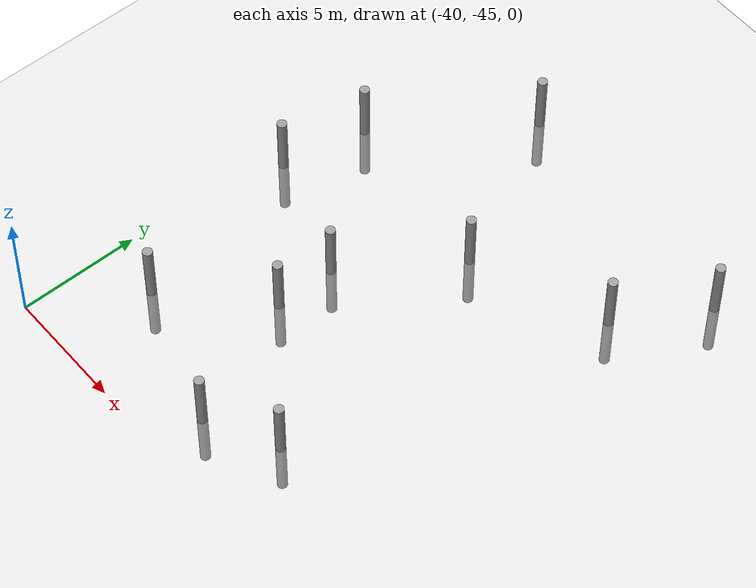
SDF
<sdf version="1.6">
 <world name="default">
  <model name="ground_plane">
   <static>1</static>
   <link name="link">
    <collision name="collision">
     <geometry><plane><normal>0 0 1</normal><size>100 100</size></plane></geometry>
     <surface><friction><ode><mu>100</mu><mu2>50</mu2></ode></friction></surface>
    </collision>
    <visual name="visual">
     <cast_shadows>0</cast_shadows>
     <geometry><plane><normal>0 0 1</normal><size>100 100</size></plane></geometry>
     <material>
      <script><uri>file://media/materials/scripts/gazebo.material</uri><name>Gazebo/Grey</name></script>
     </material>
    </visual>
   </link>
  </model>
  <model name="empty_pillars_8">
   <model name="empty_pillar_clone">
    <link name="link">
     <inertial>
      <mass>1</mass>
      <inertia><ixx>0.145833</ixx><ixy>0</ixy><ixz>0</ixz><iyy>0.145833</iyy><iyz>0</iyz><izz>0.125</izz></inertia>
     </inertial>
     <visual name="visual">
      <geometry><cylinder><radius>0.2</radius><length>5</length></cylinder></geometry>
      <material>
       <script><name>Gazebo/Grey</name><uri>file://media/materials/scripts/gazebo.material</uri></script>
       <shader type="vertex"><normal_map>__default__</normal_map></shader>
       <ambient>0.3 0.3 0.3 1</ambient>
       <diffuse>0.7 0.7 0.7 1</diffuse>
       <specular>0.01 0.01 0.01 1</specular>
       <emissive>0 0 0 1</emissive>
      </material>
     </visual>
     <collision name="collision">
      <geometry><cylinder><radius>0.05</radius><length>5</length></cylinder></geometry>
      <surface>
       <friction>
        <ode><mu>1</mu><mu2>1</mu2><fdir1>0 0 0</fdir1><slip1>0</slip1><slip2>0</slip2></ode>
        <torsional>
         <coefficient>1</coefficient>
         <patch_radius>0</patch_radius>
         <surface_radius>0</surface_radius>
         <use_patch_radius>1</use_patch_radius>
         <ode><slip>0</slip></ode>
        </torsional>
       </friction>
       <bounce><restitution_coefficient>0</restitution_coefficient><threshold>1e+06</threshold></bounce>
       <contact>
        <collide_without_contact>0</collide_without_contact>
        <collide_without_contact_bitmask>1</collide_without_contact_bitmask>
        <collide_bitmask>1</collide_bitmask>
        <ode>
         <soft_cfm>0</soft_cfm>
         <soft_erp>0.2</soft_erp>
         <kp>1e+13</kp>
         <kd>1</kd>
         <max_vel>0.01</max_vel>
         <min_depth>0</min_depth>
        </ode>
        <bullet>
         <split_impulse>1</split_impulse>
         <split_impulse_penetration_threshold>-0.01</split_impulse_penetration_threshold>
         <soft_cfm>0</soft_cfm>
         <soft_erp>0.2</soft_erp>
         <kp>1e+13</kp>
         <kd>1</kd>
        </bullet>
       </contact>
      </surface>
     </collision>
    </link>
    <static>0</static>
    <pose>1.47843 -4.49529 0 0 -0 0</pose>
   </model>
   <model name="empty_pillar_clone_12">
    <link name="link">
     <inertial>
      <mass>1</mass>
      <inertia><ixx>0.145833</ixx><ixy>0</ixy><ixz>0</ixz><iyy>0.145833</iyy><iyz>0</iyz><izz>0.125</izz></inertia>
     </inertial>
     <visual name="visual">
      <geometry><cylinder><radius>0.2</radius><length>5</length></cylinder></geometry>
      <material>
       <script><name>Gazebo/Grey</name><uri>file://media/materials/scripts/gazebo.material</uri></script>
       <shader type="vertex"><normal_map>__default__</normal_map></shader>
       <ambient>0.3 0.3 0.3 1</ambient>
       <diffuse>0.7 0.7 0.7 1</diffuse>
       <specular>0.01 0.01 0.01 1</specular>
       <emissive>0 0 0 1</emissive>
      </material>
     </visual>
     <collision name="collision">
      <geometry><cylinder><radius>0.05</radius><length>5</length></cylinder></geometry>
      <surface>
       <friction>
        <ode><mu>1</mu><mu2>1</mu2><fdir1>0 0 0</fdir1><slip1>0</slip1><slip2>0</slip2></ode>
        <torsional>
         <coefficient>1</coefficient>
         <patch_radius>0</patch_radius>
         <surface_radius>0</surface_radius>
         <use_patch_radius>1</use_patch_radius>
         <ode><slip>0</slip></ode>
        </torsional>
       </friction>
       <bounce><restitution_coefficient>0</restitution_coefficient><threshold>1e+06</threshold></bounce>
       <contact>
        <collide_without_contact>0</collide_without_contact>
        <collide_without_contact_bitmask>1</collide_without_contact_bitmask>
        <collide_bitmask>1</collide_bitmask>
        <ode>
         <soft_cfm>0</soft_cfm>
         <soft_erp>0.2</soft_erp>
         <kp>1e+13</kp>
         <kd>1</kd>
         <max_vel>0.01</max_vel>
         <min_depth>0</min_depth>
        </ode>
        <bullet>
         <split_impulse>1</split_impulse>
         <split_impulse_penetration_threshold>-0.01</split_impulse_penetration_threshold>
         <soft_cfm>0</soft_cfm>
         <soft_erp>0.2</soft_erp>
         <kp>1e+13</kp>
         <kd>1</kd>
        </bullet>
       </contact>
      </surface>
     </collision>
    </link>
    <static>0</static>
    <pose>-4.01464 -20.8403 0 0 -0 0</pose>
   </model>
   <model name="empty_pillar_clone_13">
    <link name="link">
     <inertial>
      <mass>1</mass>
      <inertia><ixx>0.145833</ixx><ixy>0</ixy><ixz>0</ixz><iyy>0.145833</iyy><iyz>0</iyz><izz>0.125</izz></inertia>
     </inertial>
     <visual name="visual">
      <geometry><cylinder><radius>0.2</radius><length>5</length></cylinder></geometry>
      <material>
       <script><name>Gazebo/Grey</name><uri>file://media/materials/scripts/gazebo.material</uri></script>
       <shader type="vertex"><normal_map>__default__</normal_map></shader>
       <ambient>0.3 0.3 0.3 1</ambient>
       <diffuse>0.7 0.7 0.7 1</diffuse>
       <specular>0.01 0.01 0.01 1</specular>
       <emissive>0 0 0 1</emissive>
      </material>
     </visual>
     <collision name="collision">
      <geometry><cylinder><radius>0.05</radius><length>5</length></cylinder></geometry>
      <surface>
       <friction>
        <ode><mu>1</mu><mu2>1</mu2><fdir1>0 0 0</fdir1><slip1>0</slip1><slip2>0</slip2></ode>
        <torsional>
         <coefficient>1</coefficient>
         <patch_radius>0</patch_radius>
         <surface_radius>0</surface_radius>
         <use_patch_radius>1</use_patch_radius>
         <ode><slip>0</slip></ode>
        </torsional>
       </friction>
       <bounce><restitution_coefficient>0</restitution_coefficient><threshold>1e+06</threshold></bounce>
       <contact>
        <collide_without_contact>0</collide_without_contact>
        <collide_without_contact_bitmask>1</collide_without_contact_bitmask>
        <collide_bitmask>1</collide_bitmask>
        <ode>
         <soft_cfm>0</soft_cfm>
         <soft_erp>0.2</soft_erp>
         <kp>1e+13</kp>
         <kd>1</kd>
         <max_vel>0.01</max_vel>
         <min_depth>0</min_depth>
        </ode>
        <bullet>
         <split_impulse>1</split_impulse>
         <split_impulse_penetration_threshold>-0.01</split_impulse_penetration_threshold>
         <soft_cfm>0</soft_cfm>
         <soft_erp>0.2</soft_erp>
         <kp>1e+13</kp>
         <kd>1</kd>
        </bullet>
       </contact>
      </surface>
     </collision>
    </link>
    <static>0</static>
    <pose>-9.01464 -14.4259 0 0 -0 0</pose>
   </model>
   <model name="empty_pillar_clone_15">
    <link name="link">
     <inertial>
      <mass>1</mass>
      <inertia><ixx>0.145833</ixx><ixy>0</ixy><ixz>0</ixz><iyy>0.145833</iyy><iyz>0</iyz><izz>0.125</izz></inertia>
     </inertial>
     <visual name="visual">
      <geometry><cylinder><radius>0.2</radius><length>5</length></cylinder></geometry>
      <material>
       <script><name>Gazebo/Grey</name><uri>file://media/materials/scripts/gazebo.material</uri></script>
       <shader type="vertex"><normal_map>__default__</normal_map></shader>
       <ambient>0.3 0.3 0.3 1</ambient>
       <diffuse>0.7 0.7 0.7 1</diffuse>
       <specular>0.01 0.01 0.01 1</specular>
       <emissive>0 0 0 1</emissive>
      </material>
     </visual>
     <collision name="collision">
      <geometry><cylinder><radius>0.05</radius><length>5</length></cylinder></geometry>
      <surface>
       <friction>
        <ode><mu>1</mu><mu2>1</mu2><fdir1>0 0 0</fdir1><slip1>0</slip1><slip2>0</slip2></ode>
        <torsional>
         <coefficient>1</coefficient>
         <patch_radius>0</patch_radius>
         <surface_radius>0</surface_radius>
         <use_patch_radius>1</use_patch_radius>
         <ode><slip>0</slip></ode>
        </torsional>
       </friction>
       <bounce><restitution_coefficient>0</restitution_coefficient><threshold>1e+06</threshold></bounce>
       <contact>
        <collide_without_contact>0</collide_without_contact>
        <collide_without_contact_bitmask>1</collide_without_contact_bitmask>
        <collide_bitmask>1</collide_bitmask>
        <ode>
         <soft_cfm>0</soft_cfm>
         <soft_erp>0.2</soft_erp>
         <kp>1e+13</kp>
         <kd>1</kd>
         <max_vel>0.01</max_vel>
         <min_depth>0</min_depth>
        </ode>
        <bullet>
         <split_impulse>1</split_impulse>
         <split_impulse_penetration_threshold>-0.01</split_impulse_penetration_threshold>
         <soft_cfm>0</soft_cfm>
         <soft_erp>0.2</soft_erp>
         <kp>1e+13</kp>
         <kd>1</kd>
        </bullet>
       </contact>
      </surface>
     </collision>
    </link>
    <static>0</static>
    <pose>-9.37193 -3.58732 0 0 -0 0</pose>
   </model>
   <model name="empty_pillar_clone_39">
    <link name="link">
     <inertial>
      <mass>1</mass>
      <inertia><ixx>0.145833</ixx><ixy>0</ixy><ixz>0</ixz><iyy>0.145833</iyy><iyz>0</iyz><izz>0.125</izz></inertia>
     </inertial>
     <visual name="visual">
      <geometry><cylinder><radius>0.2</radius><length>5</length></cylinder></geometry>
      <material>
       <script><name>Gazebo/Grey</name><uri>file://media/materials/scripts/gazebo.material</uri></script>
       <shader type="vertex"><normal_map>__default__</normal_map></shader>
       <ambient>0.3 0.3 0.3 1</ambient>
       <diffuse>0.7 0.7 0.7 1</diffuse>
       <specular>0.01 0.01 0.01 1</specular>
       <emissive>0 0 0 1</emissive>
      </material>
     </visual>
     <collision name="collision">
      <geometry><cylinder><radius>0.05</radius><length>5</length></cylinder></geometry>
      <surface>
       <friction>
        <ode><mu>1</mu><mu2>1</mu2><fdir1>0 0 0</fdir1><slip1>0</slip1><slip2>0</slip2></ode>
        <torsional>
         <coefficient>1</coefficient>
         <patch_radius>0</patch_radius>
         <surface_radius>0</surface_radius>
         <use_patch_radius>1</use_patch_radius>
         <ode><slip>0</slip></ode>
        </torsional>
       </friction>
       <bounce><restitution_coefficient>0</restitution_coefficient><threshold>1e+06</threshold></bounce>
       <contact>
        <collide_without_contact>0</collide_without_contact>
        <collide_without_contact_bitmask>1</collide_without_contact_bitmask>
        <collide_bitmask>1</collide_bitmask>
        <ode>
         <soft_cfm>0</soft_cfm>
         <soft_erp>0.2</soft_erp>
         <kp>1e+13</kp>
         <kd>1</kd>
         <max_vel>0.01</max_vel>
         <min_depth>0</min_depth>
        </ode>
        <bullet>
         <split_impulse>1</split_impulse>
         <split_impulse_penetration_threshold>-0.01</split_impulse_penetration_threshold>
         <soft_cfm>0</soft_cfm>
         <soft_erp>0.2</soft_erp>
         <kp>1e+13</kp>
         <kd>1</kd>
        </bullet>
       </contact>
      </surface>
     </collision>
    </link>
    <static>0</static>
    <pose>-13.4361 -9.12638 0 0 -0 0</pose>
   </model>
   <model name="empty_pillar_clone_41">
    <link name="link">
     <inertial>
      <mass>1</mass>
      <inertia><ixx>0.145833</ixx><ixy>0</ixy><ixz>0</ixz><iyy>0.145833</iyy><iyz>0</iyz><izz>0.125</izz></inertia>
     </inertial>
     <visual name="visual">
      <geometry><cylinder><radius>0.2</radius><length>5</length></cylinder></geometry>
      <material>
       <script><name>Gazebo/Grey</name><uri>file://media/materials/scripts/gazebo.material</uri></script>
       <shader type="vertex"><normal_map>__default__</normal_map></shader>
       <ambient>0.3 0.3 0.3 1</ambient>
       <diffuse>0.7 0.7 0.7 1</diffuse>
       <specular>0.01 0.01 0.01 1</specular>
       <emissive>0 0 0 1</emissive>
      </material>
     </visual>
     <collision name="collision">
      <geometry><cylinder><radius>0.05</radius><length>5</length></cylinder></geometry>
      <surface>
       <friction>
        <ode><mu>1</mu><mu2>1</mu2><fdir1>0 0 0</fdir1><slip1>0</slip1><slip2>0</slip2></ode>
        <torsional>
         <coefficient>1</coefficient>
         <patch_radius>0</patch_radius>
         <surface_radius>0</surface_radius>
         <use_patch_radius>1</use_patch_radius>
         <ode><slip>0</slip></ode>
        </torsional>
       </friction>
       <bounce><restitution_coefficient>0</restitution_coefficient><threshold>1e+06</threshold></bounce>
       <contact>
        <collide_without_contact>0</collide_without_contact>
        <collide_without_contact_bitmask>1</collide_without_contact_bitmask>
        <collide_bitmask>1</collide_bitmask>
        <ode>
         <soft_cfm>0</soft_cfm>
         <soft_erp>0.2</soft_erp>
         <kp>1e+13</kp>
         <kd>1</kd>
         <max_vel>0.01</max_vel>
         <min_depth>0</min_depth>
        </ode>
        <bullet>
         <split_impulse>1</split_impulse>
         <split_impulse_penetration_threshold>-0.01</split_impulse_penetration_threshold>
         <soft_cfm>0</soft_cfm>
         <soft_erp>0.2</soft_erp>
         <kp>1e+13</kp>
         <kd>1</kd>
        </bullet>
       </contact>
      </surface>
     </collision>
    </link>
    <static>0</static>
    <pose>-14.1448 -12.6326 0 0 -0 0</pose>
   </model>
   <model name="empty_pillar_clone_42">
    <link name="link">
     <inertial>
      <mass>1</mass>
      <inertia><ixx>0.145833</ixx><ixy>0</ixy><ixz>0</ixz><iyy>0.145833</iyy><iyz>0</iyz><izz>0.125</izz></inertia>
     </inertial>
     <visual name="visual">
      <geometry><cylinder><radius>0.2</radius><length>5</length></cylinder></geometry>
      <material>
       <script><name>Gazebo/Grey</name><uri>file://media/materials/scripts/gazebo.material</uri></script>
       <shader type="vertex"><normal_map>__default__</normal_map></shader>
       <ambient>0.3 0.3 0.3 1</ambient>
       <diffuse>0.7 0.7 0.7 1</diffuse>
       <specular>0.01 0.01 0.01 1</specular>
       <emissive>0 0 0 1</emissive>
      </material>
     </visual>
     <collision name="collision">
      <geometry><cylinder><radius>0.05</radius><length>5</length></cylinder></geometry>
      <surface>
       <friction>
        <ode><mu>1</mu><mu2>1</mu2><fdir1>0 0 0</fdir1><slip1>0</slip1><slip2>0</slip2></ode>
        <torsional>
         <coefficient>1</coefficient>
         <patch_radius>0</patch_radius>
         <surface_radius>0</surface_radius>
         <use_patch_radius>1</use_patch_radius>
         <ode><slip>0</slip></ode>
        </torsional>
       </friction>
       <bounce><restitution_coefficient>0</restitution_coefficient><threshold>1e+06</threshold></bounce>
       <contact>
        <collide_without_contact>0</collide_without_contact>
        <collide_without_contact_bitmask>1</collide_without_contact_bitmask>
        <collide_bitmask>1</collide_bitmask>
        <ode>
         <soft_cfm>0</soft_cfm>
         <soft_erp>0.2</soft_erp>
         <kp>1e+13</kp>
         <kd>1</kd>
         <max_vel>0.01</max_vel>
         <min_depth>0</min_depth>
        </ode>
        <bullet>
         <split_impulse>1</split_impulse>
         <split_impulse_penetration_threshold>-0.01</split_impulse_penetration_threshold>
         <soft_cfm>0</soft_cfm>
         <soft_erp>0.2</soft_erp>
         <kp>1e+13</kp>
         <kd>1</kd>
        </bullet>
       </contact>
      </surface>
     </collision>
    </link>
    <static>0</static>
    <pose>-12.5409 -20.2416 0 0 -0 0</pose>
   </model>
   <model name="empty_pillar_clone_44">
    <link name="link">
     <inertial>
      <mass>1</mass>
      <inertia><ixx>0.145833</ixx><ixy>0</ixy><ixz>0</ixz><iyy>0.145833</iyy><iyz>0</iyz><izz>0.125</izz></inertia>
     </inertial>
     <visual name="visual">
      <geometry><cylinder><radius>0.2</radius><length>5</length></cylinder></geometry>
      <material>
       <script><name>Gazebo/Grey</name><uri>file://media/materials/scripts/gazebo.material</uri></script>
       <shader type="vertex"><normal_map>__default__</normal_map></shader>
       <ambient>0.3 0.3 0.3 1</ambient>
       <diffuse>0.7 0.7 0.7 1</diffuse>
       <specular>0.01 0.01 0.01 1</specular>
       <emissive>0 0 0 1</emissive>
      </material>
     </visual>
     <collision name="collision">
      <geometry><cylinder><radius>0.05</radius><length>5</length></cylinder></geometry>
      <surface>
       <friction>
        <ode><mu>1</mu><mu2>1</mu2><fdir1>0 0 0</fdir1><slip1>0</slip1><slip2>0</slip2></ode>
        <torsional>
         <coefficient>1</coefficient>
         <patch_radius>0</patch_radius>
         <surface_radius>0</surface_radius>
         <use_patch_radius>1</use_patch_radius>
         <ode><slip>0</slip></ode>
        </torsional>
       </friction>
       <bounce><restitution_coefficient>0</restitution_coefficient><threshold>1e+06</threshold></bounce>
       <contact>
        <collide_without_contact>0</collide_without_contact>
        <collide_without_contact_bitmask>1</collide_without_contact_bitmask>
        <collide_bitmask>1</collide_bitmask>
        <ode>
         <soft_cfm>0</soft_cfm>
         <soft_erp>0.2</soft_erp>
         <kp>1e+13</kp>
         <kd>1</kd>
         <max_vel>0.01</max_vel>
         <min_depth>0</min_depth>
        </ode>
        <bullet>
         <split_impulse>1</split_impulse>
         <split_impulse_penetration_threshold>-0.01</split_impulse_penetration_threshold>
         <soft_cfm>0</soft_cfm>
         <soft_erp>0.2</soft_erp>
         <kp>1e+13</kp>
         <kd>1</kd>
        </bullet>
       </contact>
      </surface>
     </collision>
    </link>
    <static>0</static>
    <pose>-6.78285 -22.2729 0 0 -0 0</pose>
   </model>
   <model name="empty_pillar_clone_45">
    <link name="link">
     <inertial>
      <mass>1</mass>
      <inertia><ixx>0.145833</ixx><ixy>0</ixy><ixz>0</ixz><iyy>0.145833</iyy><iyz>0</iyz><izz>0.125</izz></inertia>
     </inertial>
     <visual name="visual">
      <geometry><cylinder><radius>0.2</radius><length>5</length></cylinder></geometry>
      <material>
       <script><name>Gazebo/Grey</name><uri>file://media/materials/scripts/gazebo.material</uri></script>
       <shader type="vertex"><normal_map>__default__</normal_map></shader>
       <ambient>0.3 0.3 0.3 1</ambient>
       <diffuse>0.7 0.7 0.7 1</diffuse>
       <specular>0.01 0.01 0.01 1</specular>
       <emissive>0 0 0 1</emissive>
      </material>
     </visual>
     <collision name="collision">
      <geometry><cylinder><radius>0.05</radius><length>5</length></cylinder></geometry>
      <surface>
       <friction>
        <ode><mu>1</mu><mu2>1</mu2><fdir1>0 0 0</fdir1><slip1>0</slip1><slip2>0</slip2></ode>
        <torsional>
         <coefficient>1</coefficient>
         <patch_radius>0</patch_radius>
         <surface_radius>0</surface_radius>
         <use_patch_radius>1</use_patch_radius>
         <ode><slip>0</slip></ode>
        </torsional>
       </friction>
       <bounce><restitution_coefficient>0</restitution_coefficient><threshold>1e+06</threshold></bounce>
       <contact>
        <collide_without_contact>0</collide_without_contact>
        <collide_without_contact_bitmask>1</collide_without_contact_bitmask>
        <collide_bitmask>1</collide_bitmask>
        <ode>
         <soft_cfm>0</soft_cfm>
         <soft_erp>0.2</soft_erp>
         <kp>1e+13</kp>
         <kd>1</kd>
         <max_vel>0.01</max_vel>
         <min_depth>0</min_depth>
        </ode>
        <bullet>
         <split_impulse>1</split_impulse>
         <split_impulse_penetration_threshold>-0.01</split_impulse_penetration_threshold>
         <soft_cfm>0</soft_cfm>
         <soft_erp>0.2</soft_erp>
         <kp>1e+13</kp>
         <kd>1</kd>
        </bullet>
       </contact>
      </surface>
     </collision>
    </link>
    <static>0</static>
    <pose>-9.01076 -16.9307 0 0 -0 0</pose>
   </model>
   <model name="empty_pillar_clone_47">
    <link name="link">
     <inertial>
      <mass>1</mass>
      <inertia><ixx>0.145833</ixx><ixy>0</ixy><ixz>0</ixz><iyy>0.145833</iyy><iyz>0</iyz><izz>0.125</izz></inertia>
     </inertial>
     <visual name="visual">
      <geometry><cylinder><radius>0.2</radius><length>5</length></cylinder></geometry>
      <material>
       <script><name>Gazebo/Grey</name><uri>file://media/materials/scripts/gazebo.material</uri></script>
       <shader type="vertex"><normal_map>__default__</normal_map></shader>
       <ambient>0.3 0.3 0.3 1</ambient>
       <diffuse>0.7 0.7 0.7 1</diffuse>
       <specular>0.01 0.01 0.01 1</specular>
       <emissive>0 0 0 1</emissive>
      </material>
     </visual>
     <collision name="collision">
      <geometry><cylinder><radius>0.05</radius><length>5</length></cylinder></geometry>
      <surface>
       <friction>
        <ode><mu>1</mu><mu2>1</mu2><fdir1>0 0 0</fdir1><slip1>0</slip1><slip2>0</slip2></ode>
        <torsional>
         <coefficient>1</coefficient>
         <patch_radius>0</patch_radius>
         <surface_radius>0</surface_radius>
         <use_patch_radius>1</use_patch_radius>
         <ode><slip>0</slip></ode>
        </torsional>
       </friction>
       <bounce><restitution_coefficient>0</restitution_coefficient><threshold>1e+06</threshold></bounce>
       <contact>
        <collide_without_contact>0</collide_without_contact>
        <collide_without_contact_bitmask>1</collide_without_contact_bitmask>
        <collide_bitmask>1</collide_bitmask>
        <ode>
         <soft_cfm>0</soft_cfm>
         <soft_erp>0.2</soft_erp>
         <kp>1e+13</kp>
         <kd>1</kd>
         <max_vel>0.01</max_vel>
         <min_depth>0</min_depth>
        </ode>
        <bullet>
         <split_impulse>1</split_impulse>
         <split_impulse_penetration_threshold>-0.01</split_impulse_penetration_threshold>
         <soft_cfm>0</soft_cfm>
         <soft_erp>0.2</soft_erp>
         <kp>1e+13</kp>
         <kd>1</kd>
        </bullet>
       </contact>
      </surface>
     </collision>
    </link>
    <static>0</static>
    <pose>-0.569433 -7.97346 0 0 -0 0</pose>
   </model>
   <model name="empty_pillar_clone_5">
    <link name="link">
     <inertial>
      <mass>1</mass>
      <inertia><ixx>0.145833</ixx><ixy>0</ixy><ixz>0</ixz><iyy>0.145833</iyy><iyz>0</iyz><izz>0.125</izz></inertia>
     </inertial>
     <visual name="visual">
      <geometry><cylinder><radius>0.2</radius><length>5</length></cylinder></geometry>
      <material>
       <script><name>Gazebo/Grey</name><uri>file://media/materials/scripts/gazebo.material</uri></script>
       <shader type="vertex"><normal_map>__default__</normal_map></shader>
       <ambient>0.3 0.3 0.3 1</ambient>
       <diffuse>0.7 0.7 0.7 1</diffuse>
       <specular>0.01 0.01 0.01 1</specular>
       <emissive>0 0 0 1</emissive>
      </material>
     </visual>
     <collision name="collision">
      <geometry><cylinder><radius>0.05</radius><length>5</length></cylinder></geometry>
      <surface>
       <friction>
        <ode><mu>1</mu><mu2>1</mu2><fdir1>0 0 0</fdir1><slip1>0</slip1><slip2>0</slip2></ode>
        <torsional>
         <coefficient>1</coefficient>
         <patch_radius>0</patch_radius>
         <surface_radius>0</surface_radius>
         <use_patch_radius>1</use_patch_radius>
         <ode><slip>0</slip></ode>
        </torsional>
       </friction>
       <bounce><restitution_coefficient>0</restitution_coefficient><threshold>1e+06</threshold></bounce>
       <contact>
        <collide_without_contact>0</collide_without_contact>
        <collide_without_contact_bitmask>1</collide_without_contact_bitmask>
        <collide_bitmask>1</collide_bitmask>
        <ode>
         <soft_cfm>0</soft_cfm>
         <soft_erp>0.2</soft_erp>
         <kp>1e+13</kp>
         <kd>1</kd>
         <max_vel>0.01</max_vel>
         <min_depth>0</min_depth>
        </ode>
        <bullet>
         <split_impulse>1</split_impulse>
         <split_impulse_penetration_threshold>-0.01</split_impulse_penetration_threshold>
         <soft_cfm>0</soft_cfm>
         <soft_erp>0.2</soft_erp>
         <kp>1e+13</kp>
         <kd>1</kd>
        </bullet>
       </contact>
      </surface>
     </collision>
    </link>
    <static>0</static>
    <pose>-6.03595 -10.0932 0 0 -0 0</pose>
   </model>
   <static>0</static>
   <pose>-25.0415 -20.6705 0 0 -0 0</pose>
  </model>
 </world>
</sdf>
